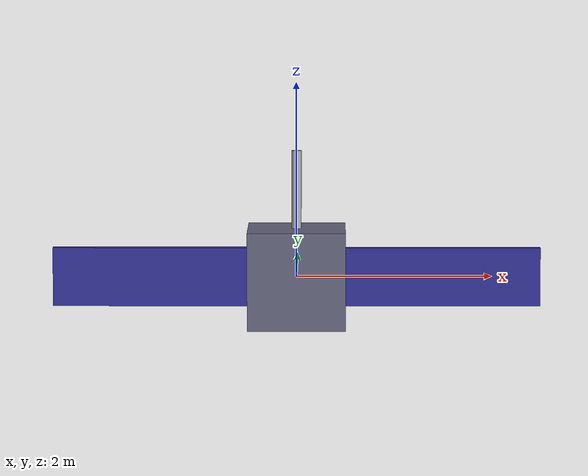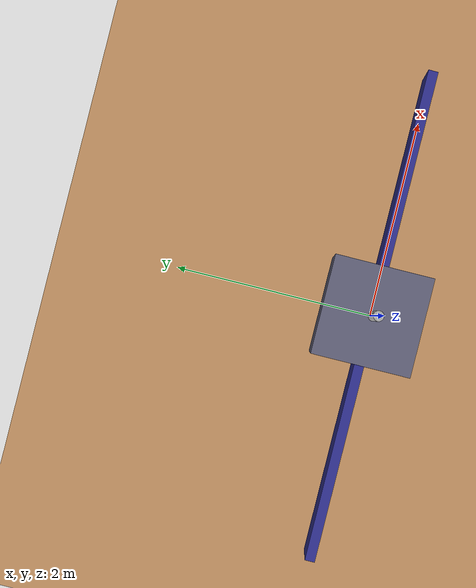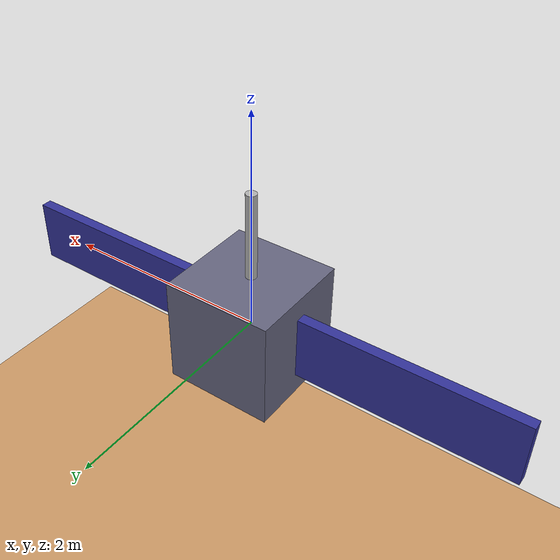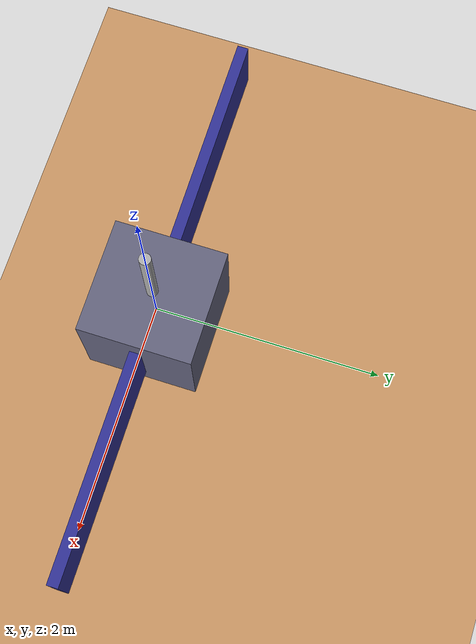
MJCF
<?xml version="1.0" encoding="utf-8"?>
<mujoco model="satellite_1thruster_rw">
  <compiler angle="degree" coordinate="local" inertiafromgeom="true"/>
  <option integrator="RK4" timestep="0.005" gravity="0 0 0"/>

  <visual>
    <global offwidth="2560" offheight="1440"/>
  </visual>

  <default>
    <joint armature="0" damping="0" limited="false"/>
    <geom conaffinity="0" condim="3" density="500" friction="1 0.5 0.5"
          margin="0" material="geom" rgba="0.8 0.6 0.4 1"/>
    <site type="sphere" size="0.015" rgba="0.5 0.5 0.5 0.3"/>
  </default>

  <asset>
    <texture type="skybox" builtin="gradient" rgb1=".1 .1 .2" rgb2="0 0 0"
             width="32" height="32"/>
    <texture name="grid" type="2d" builtin="checker" rgb1=".1 .2 .3"
             rgb2=".2 .3 .4" width="512" height="512" mark="edge" markrgb=".8 .8 .8"/>
    <material name="grid" texture="grid" texrepeat="20 20" texuniform="true" reflectance=".2"/>
    <material name="geom" rgba="0.8 0.6 0.4 1"/>
    <material name="rw_material" rgba="0.3 0.3 0.3 1"/>
    <material name="thruster_active" rgba="1.0 0.3 0.1 0.9"/>
  </asset>

  <worldbody>
    <light cutoff="100" diffuse="1 1 1" dir="-0 0 -1.3" directional="true"
           exponent="1" pos="0 0 1.3" specular="0.1 0.1 0.1"/>

    <!-- Floor for reference -->
    <geom name="floor" size="10 10 .05" type="plane" material="grid" pos="0 0 -3.0"/>

    <!-- Overhead Camera -->
    <camera name="overhead_cam" pos="0 0 4" mode="fixed" xyaxes="1 0 0 0 1 0"/>

    <!-- Tracking Camera -->
    <camera name="track_cam" pos="2 2 2" mode="trackcom" xyaxes="-0.707 0.707 0 -0.408 -0.408 0.816"/>

    <!-- Inspection Camera (wide view) -->
    <camera name="inspect_cam" pos="15 15 10" mode="fixed" fovy="60"/>

    <!-- ==================== TARGET SATELLITE ==================== -->
    <body name="target" pos="0 0 0">
      <geom name="target_body" type="box" size="0.5 0.5 0.5"
            rgba="0.4 0.4 0.5 0.9" contype="0" conaffinity="0"/>
      <!-- Solar panels -->
      <geom name="solar_l" type="box" size="1.0 0.05 0.3" pos="-1.5 0 0"
            rgba="0.2 0.2 0.6 0.9" contype="0" conaffinity="0"/>
      <geom name="solar_r" type="box" size="1.0 0.05 0.3" pos="1.5 0 0"
            rgba="0.2 0.2 0.6 0.9" contype="0" conaffinity="0"/>
      <!-- Antenna -->
      <geom name="antenna" type="cylinder" size="0.05 0.4" pos="0 0 0.9"
            rgba="0.7 0.7 0.7 0.9" contype="0" conaffinity="0"/>
    </body>

    <body name="satellite" pos="0 0 0">
      <!-- 6-DOF Free Joint -->
      <joint name="root" type="free"/>

      <!-- Satellite Body (10kg, 0.29m cube) -->
      <geom name="satellite_geom" type="box" size="0.145 0.145 0.145" mass="9.1"
            rgba="0.7 0.7 0.8 0.85"/>

      <!-- ==================== REACTION WHEELS ==================== -->
      <!-- X-axis Reaction Wheel -->
      <body name="rw_x" pos="0.08 0 0">
        <joint name="rw_x_joint" type="hinge" axis="1 0 0"
               damping="0.0001" armature="0.001"/>
        <geom name="rw_x_geom" type="cylinder" size="0.025 0.008" mass="0.3"
              euler="0 90 0" material="rw_material"/>
      </body>

      <!-- Y-axis Reaction Wheel -->
      <body name="rw_y" pos="0 0.08 0">
        <joint name="rw_y_joint" type="hinge" axis="0 1 0"
               damping="0.0001" armature="0.001"/>
        <geom name="rw_y_geom" type="cylinder" size="0.025 0.008" mass="0.3"
              euler="90 0 0" material="rw_material"/>
      </body>

      <!-- Z-axis Reaction Wheel -->
      <body name="rw_z" pos="0 0 0.08">
        <joint name="rw_z_joint" type="hinge" axis="0 0 1"
               damping="0.0001" armature="0.001"/>
        <geom name="rw_z_geom" type="cylinder" size="0.025 0.008" mass="0.3"
              material="rw_material"/>
      </body>

      <!-- ==================== THRUSTERS ==================== -->
      <!-- Rear thruster: on -X face, pushing +X (forward) -->
      <site name="thruster_main" pos="-0.145 0 0" rgba="1 0.2 0.2 0.3"/>

      <!-- Front thruster: on +X face, pushing -X (backward/braking) -->
      <site name="thruster_brake" pos="0.145 0 0" rgba="0.2 0.2 1 0.3"/>

    </body>
  </worldbody>

  <!-- ==================== ACTUATORS ==================== -->
  <actuator>
    <!-- Reaction Wheel Torque Actuators (0.5 N·m max) -->
    <motor name="rw_x_torque" joint="rw_x_joint" gear="0.5"
           ctrlrange="-1 1" ctrllimited="true"/>
    <motor name="rw_y_torque" joint="rw_y_joint" gear="0.5"
           ctrlrange="-1 1" ctrllimited="true"/>
    <motor name="rw_z_torque" joint="rw_z_joint" gear="0.5"
           ctrlrange="-1 1" ctrllimited="true"/>

    <!-- Main Thruster: rear face (-X), pushing forward (+X direction) -->
    <!-- gear="0.5 0 0 0 0 0" applies force in +X direction, max 0.5N -->
    <general name="thruster_main_force" site="thruster_main"
             gear="0.5 0 0 0 0 0"
             ctrlrange="0 1" ctrllimited="true"/>

    <!-- Brake Thruster: front face (+X), pushing backward (-X direction) -->
    <!-- gear="-0.5 0 0 0 0 0" applies force in -X direction, max 0.5N -->
    <general name="thruster_brake_force" site="thruster_brake"
             gear="-0.5 0 0 0 0 0"
             ctrlrange="0 1" ctrllimited="true"/>
  </actuator>

  <!-- ==================== SENSORS ==================== -->
  <sensor>
    <jointvel name="rw_x_speed" joint="rw_x_joint"/>
    <jointvel name="rw_y_speed" joint="rw_y_joint"/>
    <jointvel name="rw_z_speed" joint="rw_z_joint"/>

    <framepos name="sat_pos" objtype="body" objname="satellite"/>
    <framequat name="sat_quat" objtype="body" objname="satellite"/>
    <framelinvel name="sat_vel" objtype="body" objname="satellite"/>
    <frameangvel name="sat_angvel" objtype="body" objname="satellite"/>
  </sensor>

</mujoco>
